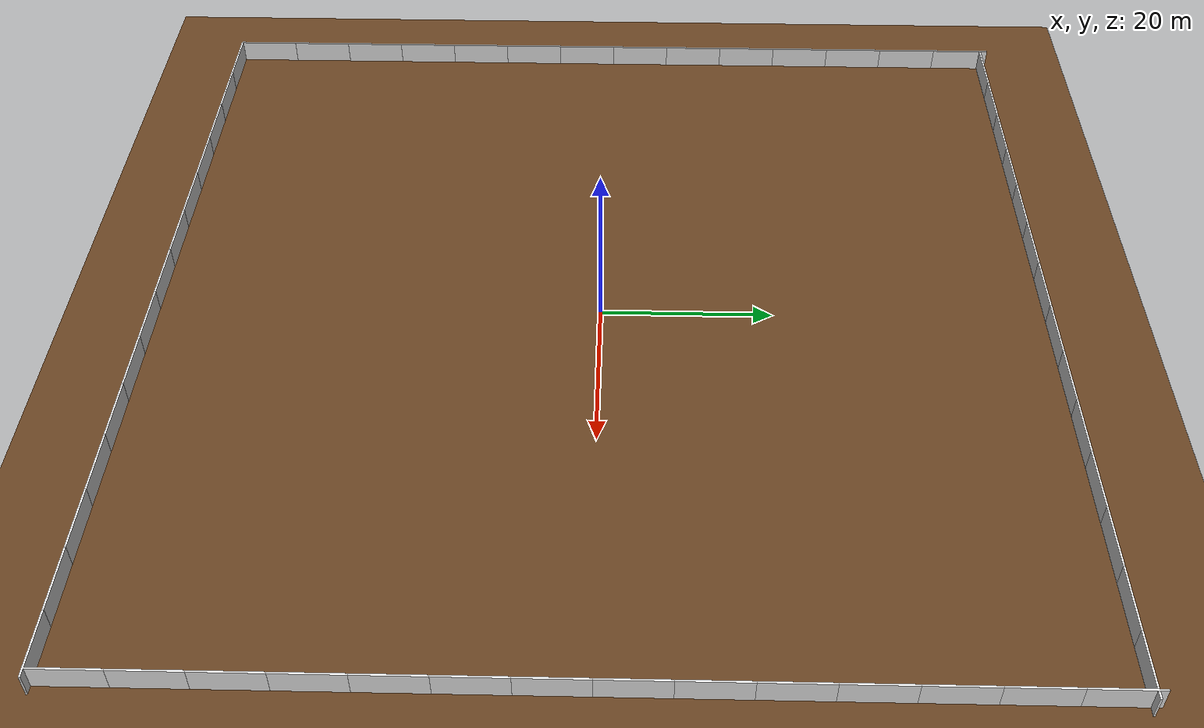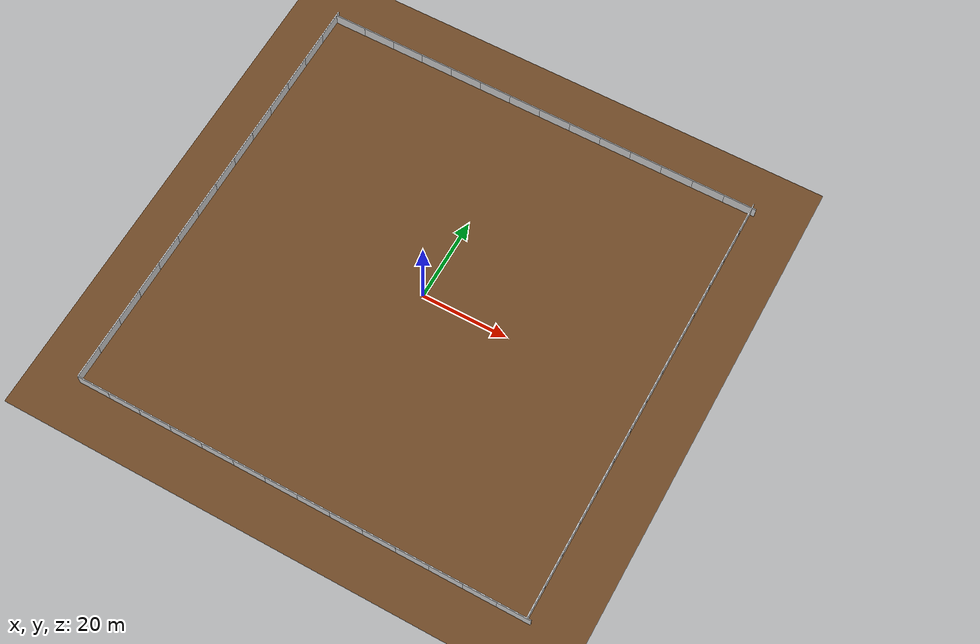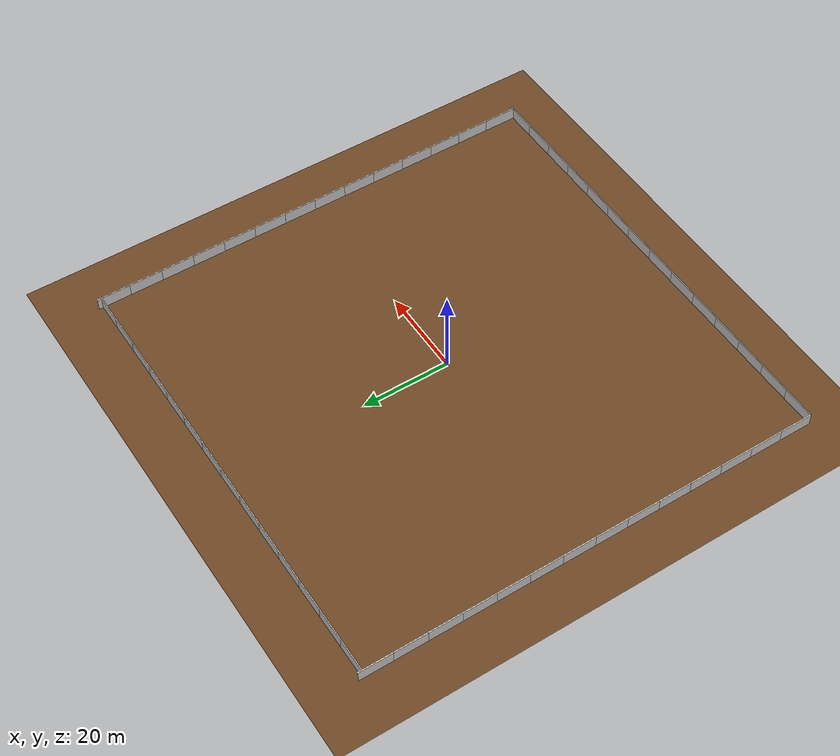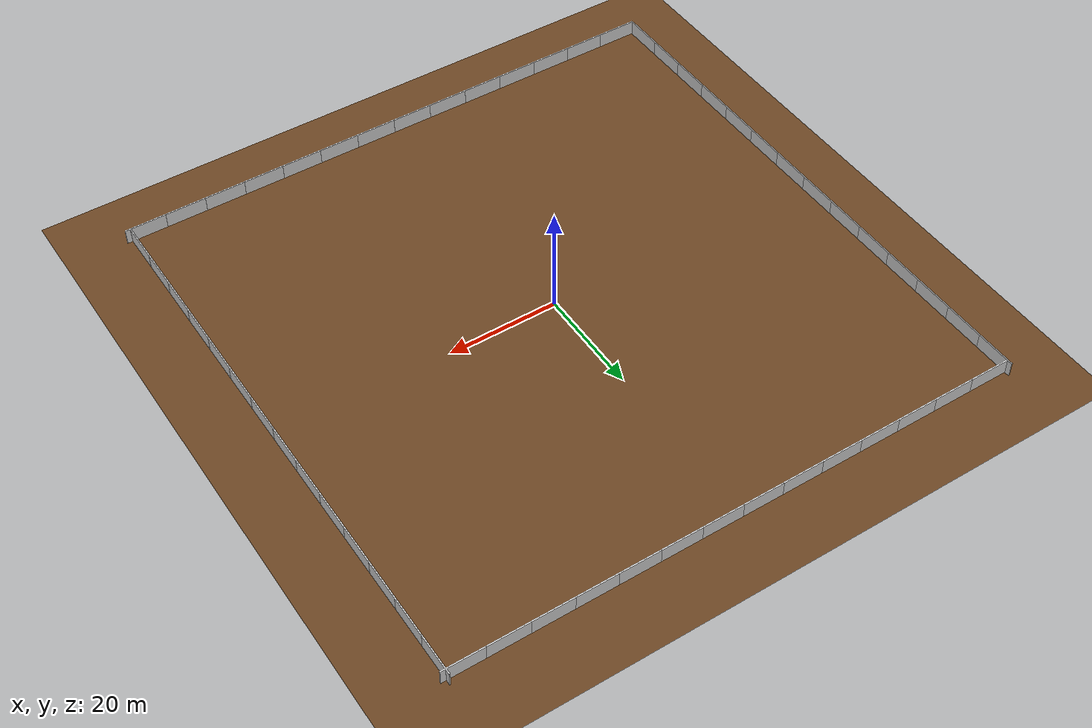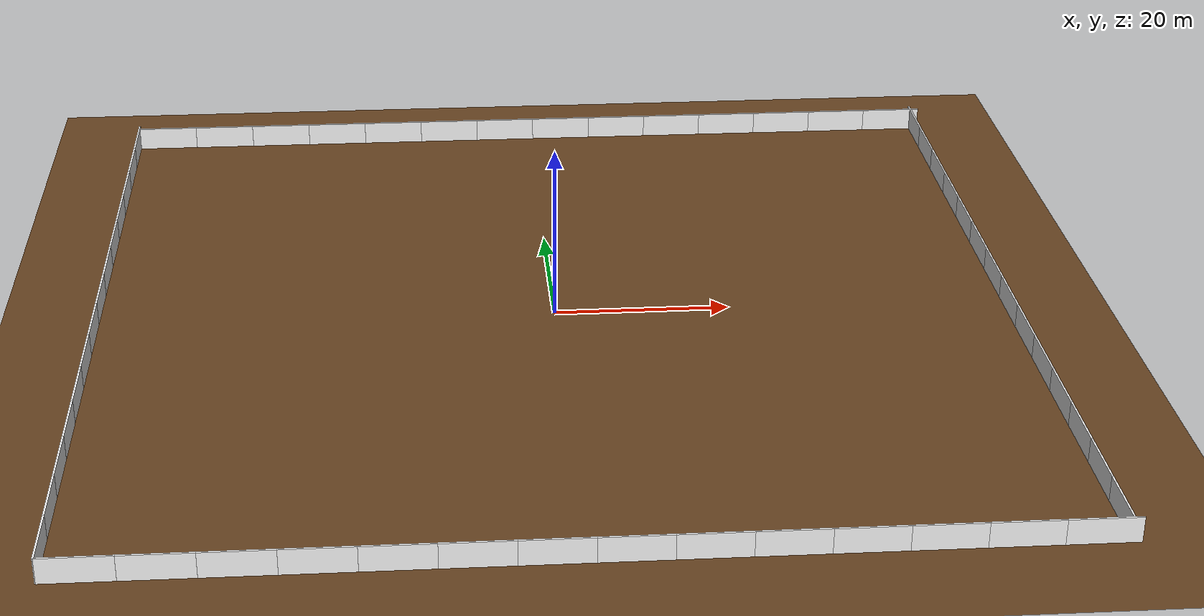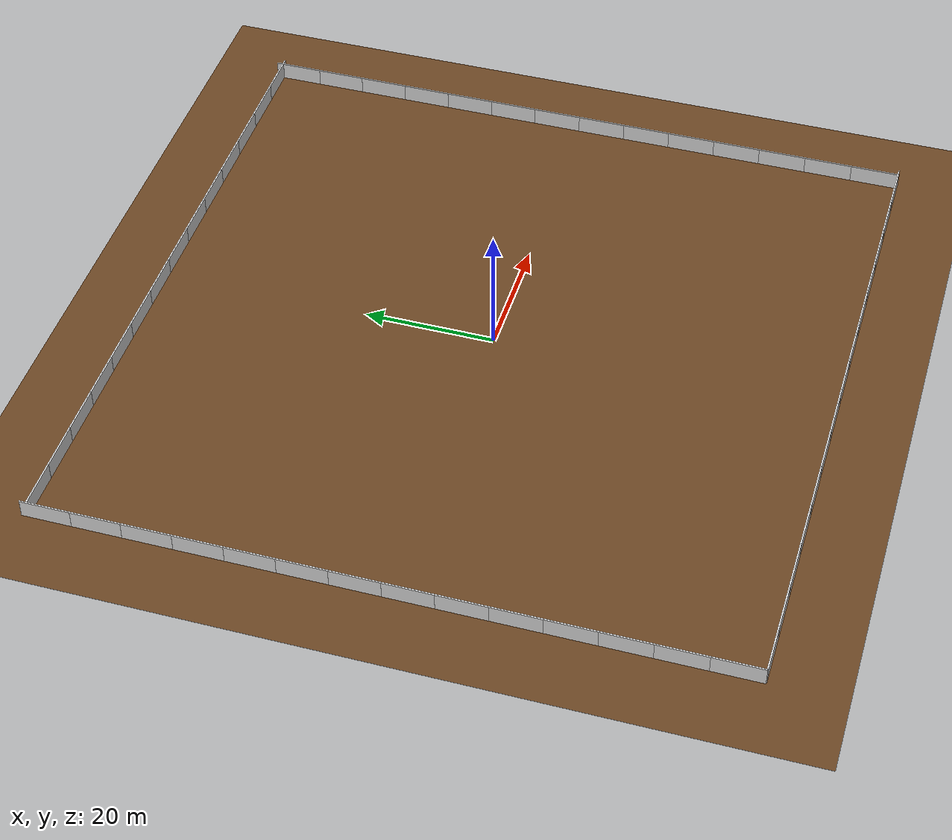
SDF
<sdf version="1.9">
 <world name="flatforest">
  <scene>
   <grid>false</grid>
   <ambient>1.0 1.0 1.0 1</ambient>
   <background>0.6 0.8 1.0 1</background>
   <shadows>false</shadows>
  </scene>
  <physics name="20ms" type="dart">
   <max_step_size>0.02</max_step_size>
   <real_time_factor>2.0</real_time_factor>
   <real_time_update_rate>100</real_time_update_rate>
   <dart>
    <collision_detector>bullet</collision_detector>
    <solver><solver_type>dantzig</solver_type></solver>
   </dart>
  </physics>
  <plugin name="ignition::gazebo::systems::Physics" filename="ignition-gazebo-physics-system"/>
  <plugin name="ignition::gazebo::systems::Sensors" filename="ignition-gazebo-sensors-system">
   <render_engine>ogre2</render_engine>
  </plugin>
  <plugin name="ignition::gazebo::systems::SceneBroadcaster" filename="ignition-gazebo-scene-broadcaster-system"/>
  <plugin name="ignition::gazebo::systems::UserCommands" filename="ignition-gazebo-user-commands-system"/>
  <plugin name="ignition::gazebo::systems::Imu" filename="libignition-gazebo-imu-system.so"/>
  <gravity>0 0 -9.8</gravity>
  <magnetic_field>6e-06 2.3e-05 -4.2e-05</magnetic_field>
  <atmosphere type="adiabatic"/>
  <model name="ground_plane">
   <static>true</static>
   <link name="link">
    <collision name="collision">
     <geometry><plane><normal>0 0 1</normal><size>110 110</size></plane></geometry>
     <surface><friction><ode><mu>50</mu></ode></friction></surface>
    </collision>
    <visual name="visual">
     <geometry><plane><normal>0 0 1</normal><size>110 110</size></plane></geometry>
     <material>
      <ambient>0.4 0.26 0.13 1</ambient>
      <diffuse>0.4 0.26 0.13 1</diffuse>
      <specular>0.1 0.1 0.1 1</specular>
     </material>
     <plugin filename="ignition-gazebo-label-system" name="ignition::gazebo::systems::Label">
      <label>1</label>
     </plugin>
    </visual>
   </link>
  </model>
  <include>
   <name>wall_s_0</name>
   <uri>model://cmu_grey_wall</uri>
   <pose>-48.25 -52.0 0 0 0 0</pose>
   <static>true</static>
  </include>
  <include>
   <name>wall_s_1</name>
   <uri>model://cmu_grey_wall</uri>
   <pose>-40.75 -52.0 0 0 0 0</pose>
   <static>true</static>
  </include>
  <include>
   <name>wall_s_2</name>
   <uri>model://cmu_grey_wall</uri>
   <pose>-33.25 -52.0 0 0 0 0</pose>
   <static>true</static>
  </include>
  <include>
   <name>wall_s_3</name>
   <uri>model://cmu_grey_wall</uri>
   <pose>-25.75 -52.0 0 0 0 0</pose>
   <static>true</static>
  </include>
  <include>
   <name>wall_s_4</name>
   <uri>model://cmu_grey_wall</uri>
   <pose>-18.25 -52.0 0 0 0 0</pose>
   <static>true</static>
  </include>
  <include>
   <name>wall_s_5</name>
   <uri>model://cmu_grey_wall</uri>
   <pose>-10.75 -52.0 0 0 0 0</pose>
   <static>true</static>
  </include>
  <include>
   <name>wall_s_6</name>
   <uri>model://cmu_grey_wall</uri>
   <pose>-3.25 -52.0 0 0 0 0</pose>
   <static>true</static>
  </include>
  <include>
   <name>wall_s_7</name>
   <uri>model://cmu_grey_wall</uri>
   <pose>4.25 -52.0 0 0 0 0</pose>
   <static>true</static>
  </include>
  <include>
   <name>wall_s_8</name>
   <uri>model://cmu_grey_wall</uri>
   <pose>11.75 -52.0 0 0 0 0</pose>
   <static>true</static>
  </include>
  <include>
   <name>wall_s_9</name>
   <uri>model://cmu_grey_wall</uri>
   <pose>19.25 -52.0 0 0 0 0</pose>
   <static>true</static>
  </include>
  <include>
   <name>wall_s_10</name>
   <uri>model://cmu_grey_wall</uri>
   <pose>26.75 -52.0 0 0 0 0</pose>
   <static>true</static>
  </include>
  <include>
   <name>wall_s_11</name>
   <uri>model://cmu_grey_wall</uri>
   <pose>34.25 -52.0 0 0 0 0</pose>
   <static>true</static>
  </include>
  <include>
   <name>wall_s_12</name>
   <uri>model://cmu_grey_wall</uri>
   <pose>41.75 -52.0 0 0 0 0</pose>
   <static>true</static>
  </include>
  <include>
   <name>wall_s_13</name>
   <uri>model://cmu_grey_wall</uri>
   <pose>49.25 -52.0 0 0 0 0</pose>
   <static>true</static>
  </include>
  <include>
   <name>wall_n_0</name>
   <uri>model://cmu_grey_wall</uri>
   <pose>-48.25 52.0 0 0 0 0</pose>
   <static>true</static>
  </include>
  <include>
   <name>wall_n_1</name>
   <uri>model://cmu_grey_wall</uri>
   <pose>-40.75 52.0 0 0 0 0</pose>
   <static>true</static>
  </include>
  <include>
   <name>wall_n_2</name>
   <uri>model://cmu_grey_wall</uri>
   <pose>-33.25 52.0 0 0 0 0</pose>
   <static>true</static>
  </include>
  <include>
   <name>wall_n_3</name>
   <uri>model://cmu_grey_wall</uri>
   <pose>-25.75 52.0 0 0 0 0</pose>
   <static>true</static>
  </include>
  <include>
   <name>wall_n_4</name>
   <uri>model://cmu_grey_wall</uri>
   <pose>-18.25 52.0 0 0 0 0</pose>
   <static>true</static>
  </include>
  <include>
   <name>wall_n_5</name>
   <uri>model://cmu_grey_wall</uri>
   <pose>-10.75 52.0 0 0 0 0</pose>
   <static>true</static>
  </include>
  <include>
   <name>wall_n_6</name>
   <uri>model://cmu_grey_wall</uri>
   <pose>-3.25 52.0 0 0 0 0</pose>
   <static>true</static>
  </include>
  <include>
   <name>wall_n_7</name>
   <uri>model://cmu_grey_wall</uri>
   <pose>4.25 52.0 0 0 0 0</pose>
   <static>true</static>
  </include>
  <include>
   <name>wall_n_8</name>
   <uri>model://cmu_grey_wall</uri>
   <pose>11.75 52.0 0 0 0 0</pose>
   <static>true</static>
  </include>
  <include>
   <name>wall_n_9</name>
   <uri>model://cmu_grey_wall</uri>
   <pose>19.25 52.0 0 0 0 0</pose>
   <static>true</static>
  </include>
  <include>
   <name>wall_n_10</name>
   <uri>model://cmu_grey_wall</uri>
   <pose>26.75 52.0 0 0 0 0</pose>
   <static>true</static>
  </include>
  <include>
   <name>wall_n_11</name>
   <uri>model://cmu_grey_wall</uri>
   <pose>34.25 52.0 0 0 0 0</pose>
   <static>true</static>
  </include>
  <include>
   <name>wall_n_12</name>
   <uri>model://cmu_grey_wall</uri>
   <pose>41.75 52.0 0 0 0 0</pose>
   <static>true</static>
  </include>
  <include>
   <name>wall_n_13</name>
   <uri>model://cmu_grey_wall</uri>
   <pose>49.25 52.0 0 0 0 0</pose>
   <static>true</static>
  </include>
  <include>
   <name>wall_w_0</name>
   <uri>model://cmu_grey_wall</uri>
   <pose>-52.0 -48.25 0 0 0 1.5708</pose>
   <static>true</static>
  </include>
  <include>
   <name>wall_w_1</name>
   <uri>model://cmu_grey_wall</uri>
   <pose>-52.0 -40.75 0 0 0 1.5708</pose>
   <static>true</static>
  </include>
  <include>
   <name>wall_w_2</name>
   <uri>model://cmu_grey_wall</uri>
   <pose>-52.0 -33.25 0 0 0 1.5708</pose>
   <static>true</static>
  </include>
  <include>
   <name>wall_w_3</name>
   <uri>model://cmu_grey_wall</uri>
   <pose>-52.0 -25.75 0 0 0 1.5708</pose>
   <static>true</static>
  </include>
  <include>
   <name>wall_w_4</name>
   <uri>model://cmu_grey_wall</uri>
   <pose>-52.0 -18.25 0 0 0 1.5708</pose>
   <static>true</static>
  </include>
  <include>
   <name>wall_w_5</name>
   <uri>model://cmu_grey_wall</uri>
   <pose>-52.0 -10.75 0 0 0 1.5708</pose>
   <static>true</static>
  </include>
  <include>
   <name>wall_w_6</name>
   <uri>model://cmu_grey_wall</uri>
   <pose>-52.0 -3.25 0 0 0 1.5708</pose>
   <static>true</static>
  </include>
  <include>
   <name>wall_w_7</name>
   <uri>model://cmu_grey_wall</uri>
   <pose>-52.0 4.25 0 0 0 1.5708</pose>
   <static>true</static>
  </include>
  <include>
   <name>wall_w_8</name>
   <uri>model://cmu_grey_wall</uri>
   <pose>-52.0 11.75 0 0 0 1.5708</pose>
   <static>true</static>
  </include>
  <include>
   <name>wall_w_9</name>
   <uri>model://cmu_grey_wall</uri>
   <pose>-52.0 19.25 0 0 0 1.5708</pose>
   <static>true</static>
  </include>
  <include>
   <name>wall_w_10</name>
   <uri>model://cmu_grey_wall</uri>
   <pose>-52.0 26.75 0 0 0 1.5708</pose>
   <static>true</static>
  </include>
  <include>
   <name>wall_w_11</name>
   <uri>model://cmu_grey_wall</uri>
   <pose>-52.0 34.25 0 0 0 1.5708</pose>
   <static>true</static>
  </include>
  <include>
   <name>wall_w_12</name>
   <uri>model://cmu_grey_wall</uri>
   <pose>-52.0 41.75 0 0 0 1.5708</pose>
   <static>true</static>
  </include>
  <include>
   <name>wall_w_13</name>
   <uri>model://cmu_grey_wall</uri>
   <pose>-52.0 49.25 0 0 0 1.5708</pose>
   <static>true</static>
  </include>
  <include>
   <name>wall_e_0</name>
   <uri>model://cmu_grey_wall</uri>
   <pose>52.0 -48.25 0 0 0 1.5708</pose>
   <static>true</static>
  </include>
  <include>
   <name>wall_e_1</name>
   <uri>model://cmu_grey_wall</uri>
   <pose>52.0 -40.75 0 0 0 1.5708</pose>
   <static>true</static>
  </include>
  <include>
   <name>wall_e_2</name>
   <uri>model://cmu_grey_wall</uri>
   <pose>52.0 -33.25 0 0 0 1.5708</pose>
   <static>true</static>
  </include>
  <include>
   <name>wall_e_3</name>
   <uri>model://cmu_grey_wall</uri>
   <pose>52.0 -25.75 0 0 0 1.5708</pose>
   <static>true</static>
  </include>
  <include>
   <name>wall_e_4</name>
   <uri>model://cmu_grey_wall</uri>
   <pose>52.0 -18.25 0 0 0 1.5708</pose>
   <static>true</static>
  </include>
  <include>
   <name>wall_e_5</name>
   <uri>model://cmu_grey_wall</uri>
   <pose>52.0 -10.75 0 0 0 1.5708</pose>
   <static>true</static>
  </include>
  <include>
   <name>wall_e_6</name>
   <uri>model://cmu_grey_wall</uri>
   <pose>52.0 -3.25 0 0 0 1.5708</pose>
   <static>true</static>
  </include>
  <include>
   <name>wall_e_7</name>
   <uri>model://cmu_grey_wall</uri>
   <pose>52.0 4.25 0 0 0 1.5708</pose>
   <static>true</static>
  </include>
  <include>
   <name>wall_e_8</name>
   <uri>model://cmu_grey_wall</uri>
   <pose>52.0 11.75 0 0 0 1.5708</pose>
   <static>true</static>
  </include>
  <include>
   <name>wall_e_9</name>
   <uri>model://cmu_grey_wall</uri>
   <pose>52.0 19.25 0 0 0 1.5708</pose>
   <static>true</static>
  </include>
  <include>
   <name>wall_e_10</name>
   <uri>model://cmu_grey_wall</uri>
   <pose>52.0 26.75 0 0 0 1.5708</pose>
   <static>true</static>
  </include>
  <include>
   <name>wall_e_11</name>
   <uri>model://cmu_grey_wall</uri>
   <pose>52.0 34.25 0 0 0 1.5708</pose>
   <static>true</static>
  </include>
  <include>
   <name>wall_e_12</name>
   <uri>model://cmu_grey_wall</uri>
   <pose>52.0 41.75 0 0 0 1.5708</pose>
   <static>true</static>
  </include>
  <include>
   <name>wall_e_13</name>
   <uri>model://cmu_grey_wall</uri>
   <pose>52.0 49.25 0 0 0 1.5708</pose>
   <static>true</static>
  </include>
  <light name="sun" type="directional">
   <pose>0 0 45 0 -0 0</pose>
   <intensity>1.0</intensity>
   <direction>-0.5 0.1 -0.9</direction>
   <diffuse>0.8 0.8 0.8 1</diffuse>
   <specular>0.2 0.2 0.2 1</specular>
   <attenuation>
    <range>1000</range>
    <linear>0.01</linear>
    <constant>0.90000000000000002</constant>
    <quadratic>0.001</quadratic>
   </attenuation>
   <spot><inner_angle>0</inner_angle><outer_angle>0</outer_angle><falloff>0</falloff></spot>
  </light>
 </world>
</sdf>

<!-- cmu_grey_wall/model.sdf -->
<sdf version="1.9">
  <model name="cmu_grey_wall">
    <static>true</static>
    <link name="link">
      <pose>0 0 1.4 0 0 0</pose>
      <collision name="collision">
        <geometry>
          <box>
            <size>7.5 0.2 2.8</size>
          </box>
        </geometry>
      </collision>
      <visual name="visual">
        <cast_shadows>false</cast_shadows>
        <geometry>
          <box>
            <size>7.5 0.2 2.8</size>
          </box>
        </geometry>
        <material>
          <diffuse>1 1 1 1</diffuse>
          <pbr>
            <metal>
              <albedo_map>model://cmu_grey_wall/materials/textures/grey_wall.png</albedo_map>
            </metal>
          </pbr>
        </material>
        <plugin filename="ignition-gazebo-label-system" name="ignition::gazebo::systems::Label">
          <label>7</label>
        </plugin>
      </visual>
    </link>
  </model>
</sdf>
